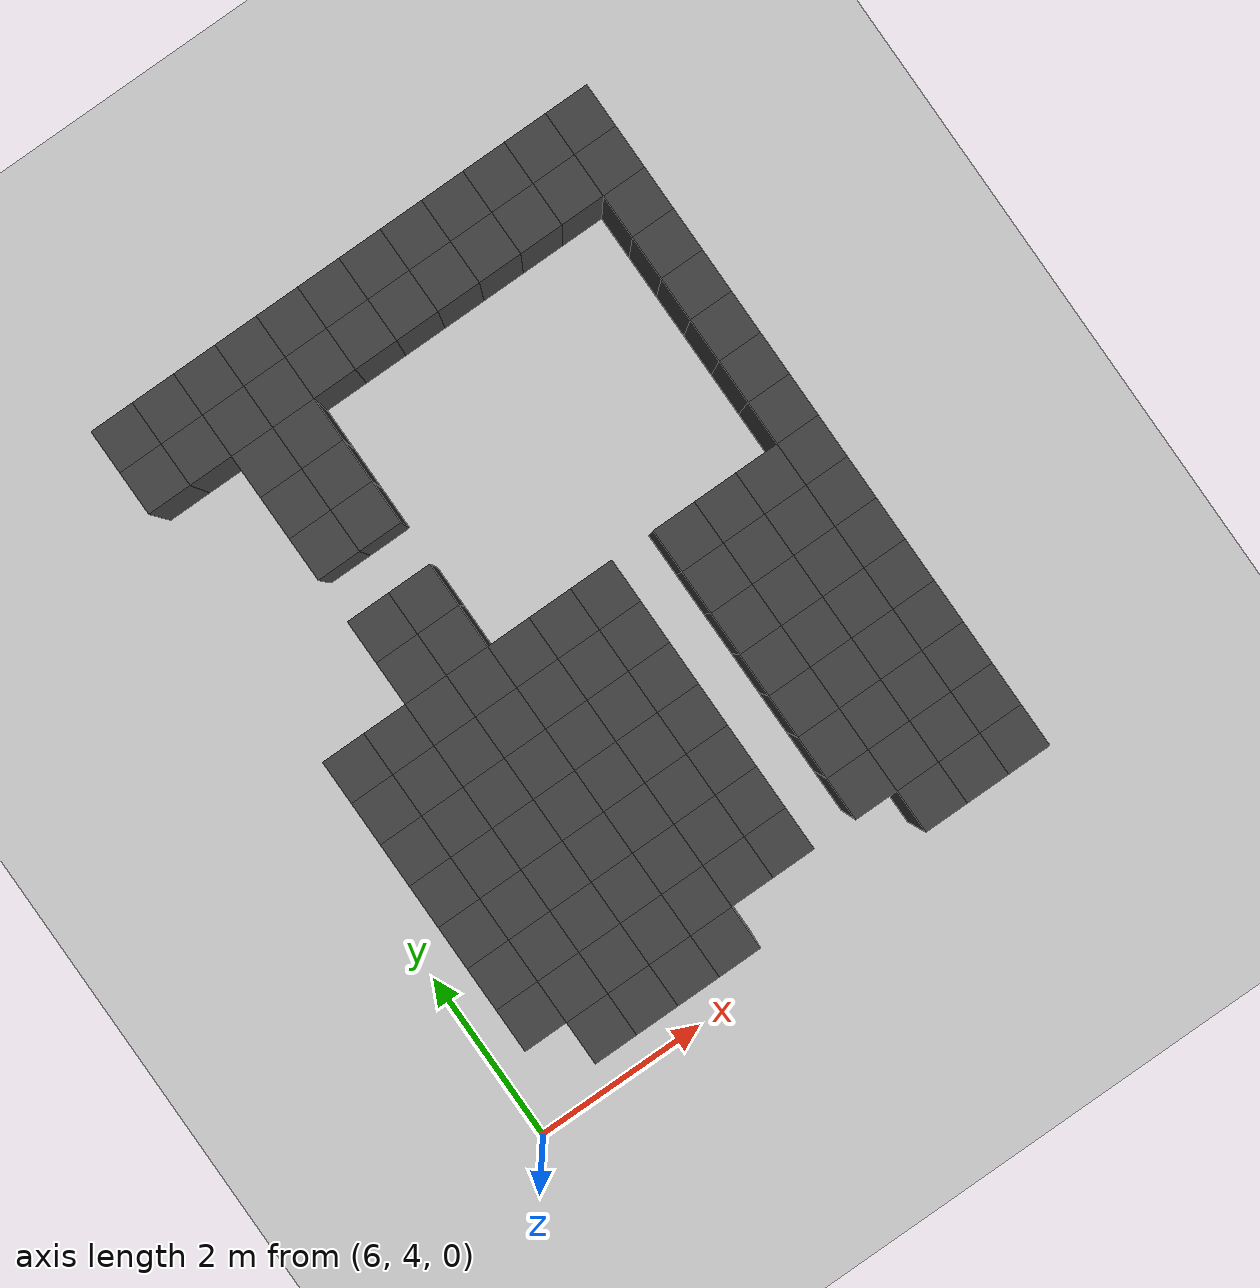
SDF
<sdf version="1.7">
 <world name="map_13994">
  <model name="ground_plane">
   <static>true</static>
   <link name="link">
    <collision name="collision">
     <geometry><plane><normal>0 0 1</normal><size>200 200</size></plane></geometry>
    </collision>
    <visual name="visual">
     <geometry><plane><normal>0 0 1</normal><size>200 200</size></plane></geometry>
     <material><ambient>0.8 0.8 0.8 1</ambient><diffuse>0.8 0.8 0.8 1</diffuse></material>
    </visual>
   </link>
  </model>
  <model name="maze_environment">
   <static>true</static>
   <link name="wall_38">
    <pose>6.750 12.250 0.500 0 0 0</pose>
    <collision name="col"><geometry><box><size>0.5 0.5 1.0</size></box></geometry></collision>
    <visual name="vis">
     <geometry><box><size>0.5 0.5 1.0</size></box></geometry>
     <material><ambient>0.15 0.15 0.15 1</ambient><diffuse>0.25 0.25 0.25 1</diffuse></material>
    </visual>
   </link>
   <link name="wall_39">
    <pose>7.250 12.250 0.500 0 0 0</pose>
    <collision name="col"><geometry><box><size>0.5 0.5 1.0</size></box></geometry></collision>
    <visual name="vis">
     <geometry><box><size>0.5 0.5 1.0</size></box></geometry>
     <material><ambient>0.15 0.15 0.15 1</ambient><diffuse>0.25 0.25 0.25 1</diffuse></material>
    </visual>
   </link>
   <link name="wall_40">
    <pose>7.750 12.250 0.500 0 0 0</pose>
    <collision name="col"><geometry><box><size>0.5 0.5 1.0</size></box></geometry></collision>
    <visual name="vis">
     <geometry><box><size>0.5 0.5 1.0</size></box></geometry>
     <material><ambient>0.15 0.15 0.15 1</ambient><diffuse>0.25 0.25 0.25 1</diffuse></material>
    </visual>
   </link>
   <link name="wall_41">
    <pose>8.250 12.250 0.500 0 0 0</pose>
    <collision name="col"><geometry><box><size>0.5 0.5 1.0</size></box></geometry></collision>
    <visual name="vis">
     <geometry><box><size>0.5 0.5 1.0</size></box></geometry>
     <material><ambient>0.15 0.15 0.15 1</ambient><diffuse>0.25 0.25 0.25 1</diffuse></material>
    </visual>
   </link>
   <link name="wall_42">
    <pose>8.750 12.250 0.500 0 0 0</pose>
    <collision name="col"><geometry><box><size>0.5 0.5 1.0</size></box></geometry></collision>
    <visual name="vis">
     <geometry><box><size>0.5 0.5 1.0</size></box></geometry>
     <material><ambient>0.15 0.15 0.15 1</ambient><diffuse>0.25 0.25 0.25 1</diffuse></material>
    </visual>
   </link>
   <link name="wall_43">
    <pose>9.250 12.250 0.500 0 0 0</pose>
    <collision name="col"><geometry><box><size>0.5 0.5 1.0</size></box></geometry></collision>
    <visual name="vis">
     <geometry><box><size>0.5 0.5 1.0</size></box></geometry>
     <material><ambient>0.15 0.15 0.15 1</ambient><diffuse>0.25 0.25 0.25 1</diffuse></material>
    </visual>
   </link>
   <link name="wall_44">
    <pose>9.750 12.250 0.500 0 0 0</pose>
    <collision name="col"><geometry><box><size>0.5 0.5 1.0</size></box></geometry></collision>
    <visual name="vis">
     <geometry><box><size>0.5 0.5 1.0</size></box></geometry>
     <material><ambient>0.15 0.15 0.15 1</ambient><diffuse>0.25 0.25 0.25 1</diffuse></material>
    </visual>
   </link>
   <link name="wall_45">
    <pose>10.250 12.250 0.500 0 0 0</pose>
    <collision name="col"><geometry><box><size>0.5 0.5 1.0</size></box></geometry></collision>
    <visual name="vis">
     <geometry><box><size>0.5 0.5 1.0</size></box></geometry>
     <material><ambient>0.15 0.15 0.15 1</ambient><diffuse>0.25 0.25 0.25 1</diffuse></material>
    </visual>
   </link>
   <link name="wall_46">
    <pose>10.750 12.250 0.500 0 0 0</pose>
    <collision name="col"><geometry><box><size>0.5 0.5 1.0</size></box></geometry></collision>
    <visual name="vis">
     <geometry><box><size>0.5 0.5 1.0</size></box></geometry>
     <material><ambient>0.15 0.15 0.15 1</ambient><diffuse>0.25 0.25 0.25 1</diffuse></material>
    </visual>
   </link>
   <link name="wall_47">
    <pose>11.250 12.250 0.500 0 0 0</pose>
    <collision name="col"><geometry><box><size>0.5 0.5 1.0</size></box></geometry></collision>
    <visual name="vis">
     <geometry><box><size>0.5 0.5 1.0</size></box></geometry>
     <material><ambient>0.15 0.15 0.15 1</ambient><diffuse>0.25 0.25 0.25 1</diffuse></material>
    </visual>
   </link>
   <link name="wall_48">
    <pose>11.750 12.250 0.500 0 0 0</pose>
    <collision name="col"><geometry><box><size>0.5 0.5 1.0</size></box></geometry></collision>
    <visual name="vis">
     <geometry><box><size>0.5 0.5 1.0</size></box></geometry>
     <material><ambient>0.15 0.15 0.15 1</ambient><diffuse>0.25 0.25 0.25 1</diffuse></material>
    </visual>
   </link>
   <link name="wall_49">
    <pose>12.250 12.250 0.500 0 0 0</pose>
    <collision name="col"><geometry><box><size>0.5 0.5 1.0</size></box></geometry></collision>
    <visual name="vis">
     <geometry><box><size>0.5 0.5 1.0</size></box></geometry>
     <material><ambient>0.15 0.15 0.15 1</ambient><diffuse>0.25 0.25 0.25 1</diffuse></material>
    </visual>
   </link>
   <link name="wall_77">
    <pose>6.750 11.750 0.500 0 0 0</pose>
    <collision name="col"><geometry><box><size>0.5 0.5 1.0</size></box></geometry></collision>
    <visual name="vis">
     <geometry><box><size>0.5 0.5 1.0</size></box></geometry>
     <material><ambient>0.15 0.15 0.15 1</ambient><diffuse>0.25 0.25 0.25 1</diffuse></material>
    </visual>
   </link>
   <link name="wall_78">
    <pose>7.250 11.750 0.500 0 0 0</pose>
    <collision name="col"><geometry><box><size>0.5 0.5 1.0</size></box></geometry></collision>
    <visual name="vis">
     <geometry><box><size>0.5 0.5 1.0</size></box></geometry>
     <material><ambient>0.15 0.15 0.15 1</ambient><diffuse>0.25 0.25 0.25 1</diffuse></material>
    </visual>
   </link>
   <link name="wall_79">
    <pose>7.750 11.750 0.500 0 0 0</pose>
    <collision name="col"><geometry><box><size>0.5 0.5 1.0</size></box></geometry></collision>
    <visual name="vis">
     <geometry><box><size>0.5 0.5 1.0</size></box></geometry>
     <material><ambient>0.15 0.15 0.15 1</ambient><diffuse>0.25 0.25 0.25 1</diffuse></material>
    </visual>
   </link>
   <link name="wall_80">
    <pose>8.250 11.750 0.500 0 0 0</pose>
    <collision name="col"><geometry><box><size>0.5 0.5 1.0</size></box></geometry></collision>
    <visual name="vis">
     <geometry><box><size>0.5 0.5 1.0</size></box></geometry>
     <material><ambient>0.15 0.15 0.15 1</ambient><diffuse>0.25 0.25 0.25 1</diffuse></material>
    </visual>
   </link>
   <link name="wall_81">
    <pose>8.750 11.750 0.500 0 0 0</pose>
    <collision name="col"><geometry><box><size>0.5 0.5 1.0</size></box></geometry></collision>
    <visual name="vis">
     <geometry><box><size>0.5 0.5 1.0</size></box></geometry>
     <material><ambient>0.15 0.15 0.15 1</ambient><diffuse>0.25 0.25 0.25 1</diffuse></material>
    </visual>
   </link>
   <link name="wall_82">
    <pose>9.250 11.750 0.500 0 0 0</pose>
    <collision name="col"><geometry><box><size>0.5 0.5 1.0</size></box></geometry></collision>
    <visual name="vis">
     <geometry><box><size>0.5 0.5 1.0</size></box></geometry>
     <material><ambient>0.15 0.15 0.15 1</ambient><diffuse>0.25 0.25 0.25 1</diffuse></material>
    </visual>
   </link>
   <link name="wall_83">
    <pose>9.750 11.750 0.500 0 0 0</pose>
    <collision name="col"><geometry><box><size>0.5 0.5 1.0</size></box></geometry></collision>
    <visual name="vis">
     <geometry><box><size>0.5 0.5 1.0</size></box></geometry>
     <material><ambient>0.15 0.15 0.15 1</ambient><diffuse>0.25 0.25 0.25 1</diffuse></material>
    </visual>
   </link>
   <link name="wall_84">
    <pose>10.250 11.750 0.500 0 0 0</pose>
    <collision name="col"><geometry><box><size>0.5 0.5 1.0</size></box></geometry></collision>
    <visual name="vis">
     <geometry><box><size>0.5 0.5 1.0</size></box></geometry>
     <material><ambient>0.15 0.15 0.15 1</ambient><diffuse>0.25 0.25 0.25 1</diffuse></material>
    </visual>
   </link>
   <link name="wall_85">
    <pose>10.750 11.750 0.500 0 0 0</pose>
    <collision name="col"><geometry><box><size>0.5 0.5 1.0</size></box></geometry></collision>
    <visual name="vis">
     <geometry><box><size>0.5 0.5 1.0</size></box></geometry>
     <material><ambient>0.15 0.15 0.15 1</ambient><diffuse>0.25 0.25 0.25 1</diffuse></material>
    </visual>
   </link>
   <link name="wall_86">
    <pose>11.250 11.750 0.500 0 0 0</pose>
    <collision name="col"><geometry><box><size>0.5 0.5 1.0</size></box></geometry></collision>
    <visual name="vis">
     <geometry><box><size>0.5 0.5 1.0</size></box></geometry>
     <material><ambient>0.15 0.15 0.15 1</ambient><diffuse>0.25 0.25 0.25 1</diffuse></material>
    </visual>
   </link>
   <link name="wall_87">
    <pose>11.750 11.750 0.500 0 0 0</pose>
    <collision name="col"><geometry><box><size>0.5 0.5 1.0</size></box></geometry></collision>
    <visual name="vis">
     <geometry><box><size>0.5 0.5 1.0</size></box></geometry>
     <material><ambient>0.15 0.15 0.15 1</ambient><diffuse>0.25 0.25 0.25 1</diffuse></material>
    </visual>
   </link>
   <link name="wall_88">
    <pose>12.250 11.750 0.500 0 0 0</pose>
    <collision name="col"><geometry><box><size>0.5 0.5 1.0</size></box></geometry></collision>
    <visual name="vis">
     <geometry><box><size>0.5 0.5 1.0</size></box></geometry>
     <material><ambient>0.15 0.15 0.15 1</ambient><diffuse>0.25 0.25 0.25 1</diffuse></material>
    </visual>
   </link>
   <link name="wall_111">
    <pose>7.750 11.250 0.500 0 0 0</pose>
    <collision name="col"><geometry><box><size>0.5 0.5 1.0</size></box></geometry></collision>
    <visual name="vis">
     <geometry><box><size>0.5 0.5 1.0</size></box></geometry>
     <material><ambient>0.15 0.15 0.15 1</ambient><diffuse>0.25 0.25 0.25 1</diffuse></material>
    </visual>
   </link>
   <link name="wall_112">
    <pose>8.250 11.250 0.500 0 0 0</pose>
    <collision name="col"><geometry><box><size>0.5 0.5 1.0</size></box></geometry></collision>
    <visual name="vis">
     <geometry><box><size>0.5 0.5 1.0</size></box></geometry>
     <material><ambient>0.15 0.15 0.15 1</ambient><diffuse>0.25 0.25 0.25 1</diffuse></material>
    </visual>
   </link>
   <link name="wall_113">
    <pose>12.250 11.250 0.500 0 0 0</pose>
    <collision name="col"><geometry><box><size>0.5 0.5 1.0</size></box></geometry></collision>
    <visual name="vis">
     <geometry><box><size>0.5 0.5 1.0</size></box></geometry>
     <material><ambient>0.15 0.15 0.15 1</ambient><diffuse>0.25 0.25 0.25 1</diffuse></material>
    </visual>
   </link>
   <link name="wall_136">
    <pose>7.750 10.750 0.500 0 0 0</pose>
    <collision name="col"><geometry><box><size>0.5 0.5 1.0</size></box></geometry></collision>
    <visual name="vis">
     <geometry><box><size>0.5 0.5 1.0</size></box></geometry>
     <material><ambient>0.15 0.15 0.15 1</ambient><diffuse>0.25 0.25 0.25 1</diffuse></material>
    </visual>
   </link>
   <link name="wall_137">
    <pose>8.250 10.750 0.500 0 0 0</pose>
    <collision name="col"><geometry><box><size>0.5 0.5 1.0</size></box></geometry></collision>
    <visual name="vis">
     <geometry><box><size>0.5 0.5 1.0</size></box></geometry>
     <material><ambient>0.15 0.15 0.15 1</ambient><diffuse>0.25 0.25 0.25 1</diffuse></material>
    </visual>
   </link>
   <link name="wall_138">
    <pose>12.250 10.750 0.500 0 0 0</pose>
    <collision name="col"><geometry><box><size>0.5 0.5 1.0</size></box></geometry></collision>
    <visual name="vis">
     <geometry><box><size>0.5 0.5 1.0</size></box></geometry>
     <material><ambient>0.15 0.15 0.15 1</ambient><diffuse>0.25 0.25 0.25 1</diffuse></material>
    </visual>
   </link>
   <link name="wall_159">
    <pose>7.750 10.250 0.500 0 0 0</pose>
    <collision name="col"><geometry><box><size>0.5 0.5 1.0</size></box></geometry></collision>
    <visual name="vis">
     <geometry><box><size>0.5 0.5 1.0</size></box></geometry>
     <material><ambient>0.15 0.15 0.15 1</ambient><diffuse>0.25 0.25 0.25 1</diffuse></material>
    </visual>
   </link>
   <link name="wall_160">
    <pose>8.250 10.250 0.500 0 0 0</pose>
    <collision name="col"><geometry><box><size>0.5 0.5 1.0</size></box></geometry></collision>
    <visual name="vis">
     <geometry><box><size>0.5 0.5 1.0</size></box></geometry>
     <material><ambient>0.15 0.15 0.15 1</ambient><diffuse>0.25 0.25 0.25 1</diffuse></material>
    </visual>
   </link>
   <link name="wall_161">
    <pose>12.250 10.250 0.500 0 0 0</pose>
    <collision name="col"><geometry><box><size>0.5 0.5 1.0</size></box></geometry></collision>
    <visual name="vis">
     <geometry><box><size>0.5 0.5 1.0</size></box></geometry>
     <material><ambient>0.15 0.15 0.15 1</ambient><diffuse>0.25 0.25 0.25 1</diffuse></material>
    </visual>
   </link>
   <link name="wall_179">
    <pose>12.250 9.750 0.500 0 0 0</pose>
    <collision name="col"><geometry><box><size>0.5 0.5 1.0</size></box></geometry></collision>
    <visual name="vis">
     <geometry><box><size>0.5 0.5 1.0</size></box></geometry>
     <material><ambient>0.15 0.15 0.15 1</ambient><diffuse>0.25 0.25 0.25 1</diffuse></material>
    </visual>
   </link>
   <link name="wall_199">
    <pose>7.750 9.250 0.500 0 0 0</pose>
    <collision name="col"><geometry><box><size>0.5 0.5 1.0</size></box></geometry></collision>
    <visual name="vis">
     <geometry><box><size>0.5 0.5 1.0</size></box></geometry>
     <material><ambient>0.15 0.15 0.15 1</ambient><diffuse>0.25 0.25 0.25 1</diffuse></material>
    </visual>
   </link>
   <link name="wall_200">
    <pose>8.250 9.250 0.500 0 0 0</pose>
    <collision name="col"><geometry><box><size>0.5 0.5 1.0</size></box></geometry></collision>
    <visual name="vis">
     <geometry><box><size>0.5 0.5 1.0</size></box></geometry>
     <material><ambient>0.15 0.15 0.15 1</ambient><diffuse>0.25 0.25 0.25 1</diffuse></material>
    </visual>
   </link>
   <link name="wall_201">
    <pose>12.250 9.250 0.500 0 0 0</pose>
    <collision name="col"><geometry><box><size>0.5 0.5 1.0</size></box></geometry></collision>
    <visual name="vis">
     <geometry><box><size>0.5 0.5 1.0</size></box></geometry>
     <material><ambient>0.15 0.15 0.15 1</ambient><diffuse>0.25 0.25 0.25 1</diffuse></material>
    </visual>
   </link>
   <link name="wall_216">
    <pose>7.750 8.750 0.500 0 0 0</pose>
    <collision name="col"><geometry><box><size>0.5 0.5 1.0</size></box></geometry></collision>
    <visual name="vis">
     <geometry><box><size>0.5 0.5 1.0</size></box></geometry>
     <material><ambient>0.15 0.15 0.15 1</ambient><diffuse>0.25 0.25 0.25 1</diffuse></material>
    </visual>
   </link>
   <link name="wall_217">
    <pose>8.250 8.750 0.500 0 0 0</pose>
    <collision name="col"><geometry><box><size>0.5 0.5 1.0</size></box></geometry></collision>
    <visual name="vis">
     <geometry><box><size>0.5 0.5 1.0</size></box></geometry>
     <material><ambient>0.15 0.15 0.15 1</ambient><diffuse>0.25 0.25 0.25 1</diffuse></material>
    </visual>
   </link>
   <link name="wall_218">
    <pose>12.250 8.750 0.500 0 0 0</pose>
    <collision name="col"><geometry><box><size>0.5 0.5 1.0</size></box></geometry></collision>
    <visual name="vis">
     <geometry><box><size>0.5 0.5 1.0</size></box></geometry>
     <material><ambient>0.15 0.15 0.15 1</ambient><diffuse>0.25 0.25 0.25 1</diffuse></material>
    </visual>
   </link>
   <link name="wall_233">
    <pose>6.750 8.250 0.500 0 0 0</pose>
    <collision name="col"><geometry><box><size>0.5 0.5 1.0</size></box></geometry></collision>
    <visual name="vis">
     <geometry><box><size>0.5 0.5 1.0</size></box></geometry>
     <material><ambient>0.15 0.15 0.15 1</ambient><diffuse>0.25 0.25 0.25 1</diffuse></material>
    </visual>
   </link>
   <link name="wall_234">
    <pose>7.250 8.250 0.500 0 0 0</pose>
    <collision name="col"><geometry><box><size>0.5 0.5 1.0</size></box></geometry></collision>
    <visual name="vis">
     <geometry><box><size>0.5 0.5 1.0</size></box></geometry>
     <material><ambient>0.15 0.15 0.15 1</ambient><diffuse>0.25 0.25 0.25 1</diffuse></material>
    </visual>
   </link>
   <link name="wall_235">
    <pose>7.750 8.250 0.500 0 0 0</pose>
    <collision name="col"><geometry><box><size>0.5 0.5 1.0</size></box></geometry></collision>
    <visual name="vis">
     <geometry><box><size>0.5 0.5 1.0</size></box></geometry>
     <material><ambient>0.15 0.15 0.15 1</ambient><diffuse>0.25 0.25 0.25 1</diffuse></material>
    </visual>
   </link>
   <link name="wall_236">
    <pose>8.250 8.250 0.500 0 0 0</pose>
    <collision name="col"><geometry><box><size>0.5 0.5 1.0</size></box></geometry></collision>
    <visual name="vis">
     <geometry><box><size>0.5 0.5 1.0</size></box></geometry>
     <material><ambient>0.15 0.15 0.15 1</ambient><diffuse>0.25 0.25 0.25 1</diffuse></material>
    </visual>
   </link>
   <link name="wall_237">
    <pose>8.750 8.250 0.500 0 0 0</pose>
    <collision name="col"><geometry><box><size>0.5 0.5 1.0</size></box></geometry></collision>
    <visual name="vis">
     <geometry><box><size>0.5 0.5 1.0</size></box></geometry>
     <material><ambient>0.15 0.15 0.15 1</ambient><diffuse>0.25 0.25 0.25 1</diffuse></material>
    </visual>
   </link>
   <link name="wall_238">
    <pose>9.250 8.250 0.500 0 0 0</pose>
    <collision name="col"><geometry><box><size>0.5 0.5 1.0</size></box></geometry></collision>
    <visual name="vis">
     <geometry><box><size>0.5 0.5 1.0</size></box></geometry>
     <material><ambient>0.15 0.15 0.15 1</ambient><diffuse>0.25 0.25 0.25 1</diffuse></material>
    </visual>
   </link>
   <link name="wall_239">
    <pose>9.750 8.250 0.500 0 0 0</pose>
    <collision name="col"><geometry><box><size>0.5 0.5 1.0</size></box></geometry></collision>
    <visual name="vis">
     <geometry><box><size>0.5 0.5 1.0</size></box></geometry>
     <material><ambient>0.15 0.15 0.15 1</ambient><diffuse>0.25 0.25 0.25 1</diffuse></material>
    </visual>
   </link>
   <link name="wall_240">
    <pose>10.750 8.250 0.500 0 0 0</pose>
    <collision name="col"><geometry><box><size>0.5 0.5 1.0</size></box></geometry></collision>
    <visual name="vis">
     <geometry><box><size>0.5 0.5 1.0</size></box></geometry>
     <material><ambient>0.15 0.15 0.15 1</ambient><diffuse>0.25 0.25 0.25 1</diffuse></material>
    </visual>
   </link>
   <link name="wall_241">
    <pose>11.250 8.250 0.500 0 0 0</pose>
    <collision name="col"><geometry><box><size>0.5 0.5 1.0</size></box></geometry></collision>
    <visual name="vis">
     <geometry><box><size>0.5 0.5 1.0</size></box></geometry>
     <material><ambient>0.15 0.15 0.15 1</ambient><diffuse>0.25 0.25 0.25 1</diffuse></material>
    </visual>
   </link>
   <link name="wall_242">
    <pose>11.750 8.250 0.500 0 0 0</pose>
    <collision name="col"><geometry><box><size>0.5 0.5 1.0</size></box></geometry></collision>
    <visual name="vis">
     <geometry><box><size>0.5 0.5 1.0</size></box></geometry>
     <material><ambient>0.15 0.15 0.15 1</ambient><diffuse>0.25 0.25 0.25 1</diffuse></material>
    </visual>
   </link>
   <link name="wall_243">
    <pose>12.250 8.250 0.500 0 0 0</pose>
    <collision name="col"><geometry><box><size>0.5 0.5 1.0</size></box></geometry></collision>
    <visual name="vis">
     <geometry><box><size>0.5 0.5 1.0</size></box></geometry>
     <material><ambient>0.15 0.15 0.15 1</ambient><diffuse>0.25 0.25 0.25 1</diffuse></material>
    </visual>
   </link>
   <link name="wall_263">
    <pose>6.750 7.750 0.500 0 0 0</pose>
    <collision name="col"><geometry><box><size>0.5 0.5 1.0</size></box></geometry></collision>
    <visual name="vis">
     <geometry><box><size>0.5 0.5 1.0</size></box></geometry>
     <material><ambient>0.15 0.15 0.15 1</ambient><diffuse>0.25 0.25 0.25 1</diffuse></material>
    </visual>
   </link>
   <link name="wall_264">
    <pose>7.250 7.750 0.500 0 0 0</pose>
    <collision name="col"><geometry><box><size>0.5 0.5 1.0</size></box></geometry></collision>
    <visual name="vis">
     <geometry><box><size>0.5 0.5 1.0</size></box></geometry>
     <material><ambient>0.15 0.15 0.15 1</ambient><diffuse>0.25 0.25 0.25 1</diffuse></material>
    </visual>
   </link>
   <link name="wall_265">
    <pose>7.750 7.750 0.500 0 0 0</pose>
    <collision name="col"><geometry><box><size>0.5 0.5 1.0</size></box></geometry></collision>
    <visual name="vis">
     <geometry><box><size>0.5 0.5 1.0</size></box></geometry>
     <material><ambient>0.15 0.15 0.15 1</ambient><diffuse>0.25 0.25 0.25 1</diffuse></material>
    </visual>
   </link>
   <link name="wall_266">
    <pose>8.250 7.750 0.500 0 0 0</pose>
    <collision name="col"><geometry><box><size>0.5 0.5 1.0</size></box></geometry></collision>
    <visual name="vis">
     <geometry><box><size>0.5 0.5 1.0</size></box></geometry>
     <material><ambient>0.15 0.15 0.15 1</ambient><diffuse>0.25 0.25 0.25 1</diffuse></material>
    </visual>
   </link>
   <link name="wall_267">
    <pose>8.750 7.750 0.500 0 0 0</pose>
    <collision name="col"><geometry><box><size>0.5 0.5 1.0</size></box></geometry></collision>
    <visual name="vis">
     <geometry><box><size>0.5 0.5 1.0</size></box></geometry>
     <material><ambient>0.15 0.15 0.15 1</ambient><diffuse>0.25 0.25 0.25 1</diffuse></material>
    </visual>
   </link>
   <link name="wall_268">
    <pose>9.250 7.750 0.500 0 0 0</pose>
    <collision name="col"><geometry><box><size>0.5 0.5 1.0</size></box></geometry></collision>
    <visual name="vis">
     <geometry><box><size>0.5 0.5 1.0</size></box></geometry>
     <material><ambient>0.15 0.15 0.15 1</ambient><diffuse>0.25 0.25 0.25 1</diffuse></material>
    </visual>
   </link>
   <link name="wall_269">
    <pose>9.750 7.750 0.500 0 0 0</pose>
    <collision name="col"><geometry><box><size>0.5 0.5 1.0</size></box></geometry></collision>
    <visual name="vis">
     <geometry><box><size>0.5 0.5 1.0</size></box></geometry>
     <material><ambient>0.15 0.15 0.15 1</ambient><diffuse>0.25 0.25 0.25 1</diffuse></material>
    </visual>
   </link>
   <link name="wall_270">
    <pose>10.750 7.750 0.500 0 0 0</pose>
    <collision name="col"><geometry><box><size>0.5 0.5 1.0</size></box></geometry></collision>
    <visual name="vis">
     <geometry><box><size>0.5 0.5 1.0</size></box></geometry>
     <material><ambient>0.15 0.15 0.15 1</ambient><diffuse>0.25 0.25 0.25 1</diffuse></material>
    </visual>
   </link>
   <link name="wall_271">
    <pose>11.250 7.750 0.500 0 0 0</pose>
    <collision name="col"><geometry><box><size>0.5 0.5 1.0</size></box></geometry></collision>
    <visual name="vis">
     <geometry><box><size>0.5 0.5 1.0</size></box></geometry>
     <material><ambient>0.15 0.15 0.15 1</ambient><diffuse>0.25 0.25 0.25 1</diffuse></material>
    </visual>
   </link>
   <link name="wall_272">
    <pose>11.750 7.750 0.500 0 0 0</pose>
    <collision name="col"><geometry><box><size>0.5 0.5 1.0</size></box></geometry></collision>
    <visual name="vis">
     <geometry><box><size>0.5 0.5 1.0</size></box></geometry>
     <material><ambient>0.15 0.15 0.15 1</ambient><diffuse>0.25 0.25 0.25 1</diffuse></material>
    </visual>
   </link>
   <link name="wall_273">
    <pose>12.250 7.750 0.500 0 0 0</pose>
    <collision name="col"><geometry><box><size>0.5 0.5 1.0</size></box></geometry></collision>
    <visual name="vis">
     <geometry><box><size>0.5 0.5 1.0</size></box></geometry>
     <material><ambient>0.15 0.15 0.15 1</ambient><diffuse>0.25 0.25 0.25 1</diffuse></material>
    </visual>
   </link>
   <link name="wall_293">
    <pose>6.750 7.250 0.500 0 0 0</pose>
    <collision name="col"><geometry><box><size>0.5 0.5 1.0</size></box></geometry></collision>
    <visual name="vis">
     <geometry><box><size>0.5 0.5 1.0</size></box></geometry>
     <material><ambient>0.15 0.15 0.15 1</ambient><diffuse>0.25 0.25 0.25 1</diffuse></material>
    </visual>
   </link>
   <link name="wall_294">
    <pose>7.250 7.250 0.500 0 0 0</pose>
    <collision name="col"><geometry><box><size>0.5 0.5 1.0</size></box></geometry></collision>
    <visual name="vis">
     <geometry><box><size>0.5 0.5 1.0</size></box></geometry>
     <material><ambient>0.15 0.15 0.15 1</ambient><diffuse>0.25 0.25 0.25 1</diffuse></material>
    </visual>
   </link>
   <link name="wall_295">
    <pose>7.750 7.250 0.500 0 0 0</pose>
    <collision name="col"><geometry><box><size>0.5 0.5 1.0</size></box></geometry></collision>
    <visual name="vis">
     <geometry><box><size>0.5 0.5 1.0</size></box></geometry>
     <material><ambient>0.15 0.15 0.15 1</ambient><diffuse>0.25 0.25 0.25 1</diffuse></material>
    </visual>
   </link>
   <link name="wall_296">
    <pose>8.250 7.250 0.500 0 0 0</pose>
    <collision name="col"><geometry><box><size>0.5 0.5 1.0</size></box></geometry></collision>
    <visual name="vis">
     <geometry><box><size>0.5 0.5 1.0</size></box></geometry>
     <material><ambient>0.15 0.15 0.15 1</ambient><diffuse>0.25 0.25 0.25 1</diffuse></material>
    </visual>
   </link>
   <link name="wall_297">
    <pose>8.750 7.250 0.500 0 0 0</pose>
    <collision name="col"><geometry><box><size>0.5 0.5 1.0</size></box></geometry></collision>
    <visual name="vis">
     <geometry><box><size>0.5 0.5 1.0</size></box></geometry>
     <material><ambient>0.15 0.15 0.15 1</ambient><diffuse>0.25 0.25 0.25 1</diffuse></material>
    </visual>
   </link>
   <link name="wall_298">
    <pose>9.250 7.250 0.500 0 0 0</pose>
    <collision name="col"><geometry><box><size>0.5 0.5 1.0</size></box></geometry></collision>
    <visual name="vis">
     <geometry><box><size>0.5 0.5 1.0</size></box></geometry>
     <material><ambient>0.15 0.15 0.15 1</ambient><diffuse>0.25 0.25 0.25 1</diffuse></material>
    </visual>
   </link>
   <link name="wall_299">
    <pose>9.750 7.250 0.500 0 0 0</pose>
    <collision name="col"><geometry><box><size>0.5 0.5 1.0</size></box></geometry></collision>
    <visual name="vis">
     <geometry><box><size>0.5 0.5 1.0</size></box></geometry>
     <material><ambient>0.15 0.15 0.15 1</ambient><diffuse>0.25 0.25 0.25 1</diffuse></material>
    </visual>
   </link>
   <link name="wall_300">
    <pose>10.750 7.250 0.500 0 0 0</pose>
    <collision name="col"><geometry><box><size>0.5 0.5 1.0</size></box></geometry></collision>
    <visual name="vis">
     <geometry><box><size>0.5 0.5 1.0</size></box></geometry>
     <material><ambient>0.15 0.15 0.15 1</ambient><diffuse>0.25 0.25 0.25 1</diffuse></material>
    </visual>
   </link>
   <link name="wall_301">
    <pose>11.250 7.250 0.500 0 0 0</pose>
    <collision name="col"><geometry><box><size>0.5 0.5 1.0</size></box></geometry></collision>
    <visual name="vis">
     <geometry><box><size>0.5 0.5 1.0</size></box></geometry>
     <material><ambient>0.15 0.15 0.15 1</ambient><diffuse>0.25 0.25 0.25 1</diffuse></material>
    </visual>
   </link>
   <link name="wall_302">
    <pose>11.750 7.250 0.500 0 0 0</pose>
    <collision name="col"><geometry><box><size>0.5 0.5 1.0</size></box></geometry></collision>
    <visual name="vis">
     <geometry><box><size>0.5 0.5 1.0</size></box></geometry>
     <material><ambient>0.15 0.15 0.15 1</ambient><diffuse>0.25 0.25 0.25 1</diffuse></material>
    </visual>
   </link>
   <link name="wall_303">
    <pose>12.250 7.250 0.500 0 0 0</pose>
    <collision name="col"><geometry><box><size>0.5 0.5 1.0</size></box></geometry></collision>
    <visual name="vis">
     <geometry><box><size>0.5 0.5 1.0</size></box></geometry>
     <material><ambient>0.15 0.15 0.15 1</ambient><diffuse>0.25 0.25 0.25 1</diffuse></material>
    </visual>
   </link>
   <link name="wall_330">
    <pose>6.750 6.750 0.500 0 0 0</pose>
    <collision name="col"><geometry><box><size>0.5 0.5 1.0</size></box></geometry></collision>
    <visual name="vis">
     <geometry><box><size>0.5 0.5 1.0</size></box></geometry>
     <material><ambient>0.15 0.15 0.15 1</ambient><diffuse>0.25 0.25 0.25 1</diffuse></material>
    </visual>
   </link>
   <link name="wall_331">
    <pose>7.250 6.750 0.500 0 0 0</pose>
    <collision name="col"><geometry><box><size>0.5 0.5 1.0</size></box></geometry></collision>
    <visual name="vis">
     <geometry><box><size>0.5 0.5 1.0</size></box></geometry>
     <material><ambient>0.15 0.15 0.15 1</ambient><diffuse>0.25 0.25 0.25 1</diffuse></material>
    </visual>
   </link>
   <link name="wall_332">
    <pose>7.750 6.750 0.500 0 0 0</pose>
    <collision name="col"><geometry><box><size>0.5 0.5 1.0</size></box></geometry></collision>
    <visual name="vis">
     <geometry><box><size>0.5 0.5 1.0</size></box></geometry>
     <material><ambient>0.15 0.15 0.15 1</ambient><diffuse>0.25 0.25 0.25 1</diffuse></material>
    </visual>
   </link>
   <link name="wall_333">
    <pose>8.250 6.750 0.500 0 0 0</pose>
    <collision name="col"><geometry><box><size>0.5 0.5 1.0</size></box></geometry></collision>
    <visual name="vis">
     <geometry><box><size>0.5 0.5 1.0</size></box></geometry>
     <material><ambient>0.15 0.15 0.15 1</ambient><diffuse>0.25 0.25 0.25 1</diffuse></material>
    </visual>
   </link>
   <link name="wall_334">
    <pose>8.750 6.750 0.500 0 0 0</pose>
    <collision name="col"><geometry><box><size>0.5 0.5 1.0</size></box></geometry></collision>
    <visual name="vis">
     <geometry><box><size>0.5 0.5 1.0</size></box></geometry>
     <material><ambient>0.15 0.15 0.15 1</ambient><diffuse>0.25 0.25 0.25 1</diffuse></material>
    </visual>
   </link>
   <link name="wall_335">
    <pose>9.250 6.750 0.500 0 0 0</pose>
    <collision name="col"><geometry><box><size>0.5 0.5 1.0</size></box></geometry></collision>
    <visual name="vis">
     <geometry><box><size>0.5 0.5 1.0</size></box></geometry>
     <material><ambient>0.15 0.15 0.15 1</ambient><diffuse>0.25 0.25 0.25 1</diffuse></material>
    </visual>
   </link>
   <link name="wall_336">
    <pose>9.750 6.750 0.500 0 0 0</pose>
    <collision name="col"><geometry><box><size>0.5 0.5 1.0</size></box></geometry></collision>
    <visual name="vis">
     <geometry><box><size>0.5 0.5 1.0</size></box></geometry>
     <material><ambient>0.15 0.15 0.15 1</ambient><diffuse>0.25 0.25 0.25 1</diffuse></material>
    </visual>
   </link>
   <link name="wall_337">
    <pose>10.750 6.750 0.500 0 0 0</pose>
    <collision name="col"><geometry><box><size>0.5 0.5 1.0</size></box></geometry></collision>
    <visual name="vis">
     <geometry><box><size>0.5 0.5 1.0</size></box></geometry>
     <material><ambient>0.15 0.15 0.15 1</ambient><diffuse>0.25 0.25 0.25 1</diffuse></material>
    </visual>
   </link>
   <link name="wall_338">
    <pose>11.250 6.750 0.500 0 0 0</pose>
    <collision name="col"><geometry><box><size>0.5 0.5 1.0</size></box></geometry></collision>
    <visual name="vis">
     <geometry><box><size>0.5 0.5 1.0</size></box></geometry>
     <material><ambient>0.15 0.15 0.15 1</ambient><diffuse>0.25 0.25 0.25 1</diffuse></material>
    </visual>
   </link>
   <link name="wall_339">
    <pose>11.750 6.750 0.500 0 0 0</pose>
    <collision name="col"><geometry><box><size>0.5 0.5 1.0</size></box></geometry></collision>
    <visual name="vis">
     <geometry><box><size>0.5 0.5 1.0</size></box></geometry>
     <material><ambient>0.15 0.15 0.15 1</ambient><diffuse>0.25 0.25 0.25 1</diffuse></material>
    </visual>
   </link>
   <link name="wall_340">
    <pose>12.250 6.750 0.500 0 0 0</pose>
    <collision name="col"><geometry><box><size>0.5 0.5 1.0</size></box></geometry></collision>
    <visual name="vis">
     <geometry><box><size>0.5 0.5 1.0</size></box></geometry>
     <material><ambient>0.15 0.15 0.15 1</ambient><diffuse>0.25 0.25 0.25 1</diffuse></material>
    </visual>
   </link>
   <link name="wall_363">
    <pose>6.750 6.250 0.500 0 0 0</pose>
    <collision name="col"><geometry><box><size>0.5 0.5 1.0</size></box></geometry></collision>
    <visual name="vis">
     <geometry><box><size>0.5 0.5 1.0</size></box></geometry>
     <material><ambient>0.15 0.15 0.15 1</ambient><diffuse>0.25 0.25 0.25 1</diffuse></material>
    </visual>
   </link>
   <link name="wall_364">
    <pose>7.250 6.250 0.500 0 0 0</pose>
    <collision name="col"><geometry><box><size>0.5 0.5 1.0</size></box></geometry></collision>
    <visual name="vis">
     <geometry><box><size>0.5 0.5 1.0</size></box></geometry>
     <material><ambient>0.15 0.15 0.15 1</ambient><diffuse>0.25 0.25 0.25 1</diffuse></material>
    </visual>
   </link>
   <link name="wall_365">
    <pose>7.750 6.250 0.500 0 0 0</pose>
    <collision name="col"><geometry><box><size>0.5 0.5 1.0</size></box></geometry></collision>
    <visual name="vis">
     <geometry><box><size>0.5 0.5 1.0</size></box></geometry>
     <material><ambient>0.15 0.15 0.15 1</ambient><diffuse>0.25 0.25 0.25 1</diffuse></material>
    </visual>
   </link>
   <link name="wall_366">
    <pose>8.250 6.250 0.500 0 0 0</pose>
    <collision name="col"><geometry><box><size>0.5 0.5 1.0</size></box></geometry></collision>
    <visual name="vis">
     <geometry><box><size>0.5 0.5 1.0</size></box></geometry>
     <material><ambient>0.15 0.15 0.15 1</ambient><diffuse>0.25 0.25 0.25 1</diffuse></material>
    </visual>
   </link>
   <link name="wall_367">
    <pose>8.750 6.250 0.500 0 0 0</pose>
    <collision name="col"><geometry><box><size>0.5 0.5 1.0</size></box></geometry></collision>
    <visual name="vis">
     <geometry><box><size>0.5 0.5 1.0</size></box></geometry>
     <material><ambient>0.15 0.15 0.15 1</ambient><diffuse>0.25 0.25 0.25 1</diffuse></material>
    </visual>
   </link>
   <link name="wall_368">
    <pose>9.250 6.250 0.500 0 0 0</pose>
    <collision name="col"><geometry><box><size>0.5 0.5 1.0</size></box></geometry></collision>
    <visual name="vis">
     <geometry><box><size>0.5 0.5 1.0</size></box></geometry>
     <material><ambient>0.15 0.15 0.15 1</ambient><diffuse>0.25 0.25 0.25 1</diffuse></material>
    </visual>
   </link>
   <link name="wall_369">
    <pose>9.750 6.250 0.500 0 0 0</pose>
    <collision name="col"><geometry><box><size>0.5 0.5 1.0</size></box></geometry></collision>
    <visual name="vis">
     <geometry><box><size>0.5 0.5 1.0</size></box></geometry>
     <material><ambient>0.15 0.15 0.15 1</ambient><diffuse>0.25 0.25 0.25 1</diffuse></material>
    </visual>
   </link>
   <link name="wall_370">
    <pose>10.750 6.250 0.500 0 0 0</pose>
    <collision name="col"><geometry><box><size>0.5 0.5 1.0</size></box></geometry></collision>
    <visual name="vis">
     <geometry><box><size>0.5 0.5 1.0</size></box></geometry>
     <material><ambient>0.15 0.15 0.15 1</ambient><diffuse>0.25 0.25 0.25 1</diffuse></material>
    </visual>
   </link>
   <link name="wall_371">
    <pose>11.250 6.250 0.500 0 0 0</pose>
    <collision name="col"><geometry><box><size>0.5 0.5 1.0</size></box></geometry></collision>
    <visual name="vis">
     <geometry><box><size>0.5 0.5 1.0</size></box></geometry>
     <material><ambient>0.15 0.15 0.15 1</ambient><diffuse>0.25 0.25 0.25 1</diffuse></material>
    </visual>
   </link>
   <link name="wall_372">
    <pose>11.750 6.250 0.500 0 0 0</pose>
    <collision name="col"><geometry><box><size>0.5 0.5 1.0</size></box></geometry></collision>
    <visual name="vis">
     <geometry><box><size>0.5 0.5 1.0</size></box></geometry>
     <material><ambient>0.15 0.15 0.15 1</ambient><diffuse>0.25 0.25 0.25 1</diffuse></material>
    </visual>
   </link>
   <link name="wall_373">
    <pose>12.250 6.250 0.500 0 0 0</pose>
    <collision name="col"><geometry><box><size>0.5 0.5 1.0</size></box></geometry></collision>
    <visual name="vis">
     <geometry><box><size>0.5 0.5 1.0</size></box></geometry>
     <material><ambient>0.15 0.15 0.15 1</ambient><diffuse>0.25 0.25 0.25 1</diffuse></material>
    </visual>
   </link>
   <link name="wall_397">
    <pose>6.750 5.750 0.500 0 0 0</pose>
    <collision name="col"><geometry><box><size>0.5 0.5 1.0</size></box></geometry></collision>
    <visual name="vis">
     <geometry><box><size>0.5 0.5 1.0</size></box></geometry>
     <material><ambient>0.15 0.15 0.15 1</ambient><diffuse>0.25 0.25 0.25 1</diffuse></material>
    </visual>
   </link>
   <link name="wall_398">
    <pose>7.250 5.750 0.500 0 0 0</pose>
    <collision name="col"><geometry><box><size>0.5 0.5 1.0</size></box></geometry></collision>
    <visual name="vis">
     <geometry><box><size>0.5 0.5 1.0</size></box></geometry>
     <material><ambient>0.15 0.15 0.15 1</ambient><diffuse>0.25 0.25 0.25 1</diffuse></material>
    </visual>
   </link>
   <link name="wall_399">
    <pose>7.750 5.750 0.500 0 0 0</pose>
    <collision name="col"><geometry><box><size>0.5 0.5 1.0</size></box></geometry></collision>
    <visual name="vis">
     <geometry><box><size>0.5 0.5 1.0</size></box></geometry>
     <material><ambient>0.15 0.15 0.15 1</ambient><diffuse>0.25 0.25 0.25 1</diffuse></material>
    </visual>
   </link>
   <link name="wall_400">
    <pose>8.250 5.750 0.500 0 0 0</pose>
    <collision name="col"><geometry><box><size>0.5 0.5 1.0</size></box></geometry></collision>
    <visual name="vis">
     <geometry><box><size>0.5 0.5 1.0</size></box></geometry>
     <material><ambient>0.15 0.15 0.15 1</ambient><diffuse>0.25 0.25 0.25 1</diffuse></material>
    </visual>
   </link>
   <link name="wall_401">
    <pose>8.750 5.750 0.500 0 0 0</pose>
    <collision name="col"><geometry><box><size>0.5 0.5 1.0</size></box></geometry></collision>
    <visual name="vis">
     <geometry><box><size>0.5 0.5 1.0</size></box></geometry>
     <material><ambient>0.15 0.15 0.15 1</ambient><diffuse>0.25 0.25 0.25 1</diffuse></material>
    </visual>
   </link>
   <link name="wall_402">
    <pose>9.250 5.750 0.500 0 0 0</pose>
    <collision name="col"><geometry><box><size>0.5 0.5 1.0</size></box></geometry></collision>
    <visual name="vis">
     <geometry><box><size>0.5 0.5 1.0</size></box></geometry>
     <material><ambient>0.15 0.15 0.15 1</ambient><diffuse>0.25 0.25 0.25 1</diffuse></material>
    </visual>
   </link>
   <link name="wall_403">
    <pose>9.750 5.750 0.500 0 0 0</pose>
    <collision name="col"><geometry><box><size>0.5 0.5 1.0</size></box></geometry></collision>
    <visual name="vis">
     <geometry><box><size>0.5 0.5 1.0</size></box></geometry>
     <material><ambient>0.15 0.15 0.15 1</ambient><diffuse>0.25 0.25 0.25 1</diffuse></material>
    </visual>
   </link>
   <link name="wall_404">
    <pose>10.750 5.750 0.500 0 0 0</pose>
    <collision name="col"><geometry><box><size>0.5 0.5 1.0</size></box></geometry></collision>
    <visual name="vis">
     <geometry><box><size>0.5 0.5 1.0</size></box></geometry>
     <material><ambient>0.15 0.15 0.15 1</ambient><diffuse>0.25 0.25 0.25 1</diffuse></material>
    </visual>
   </link>
   <link name="wall_405">
    <pose>11.250 5.750 0.500 0 0 0</pose>
    <collision name="col"><geometry><box><size>0.5 0.5 1.0</size></box></geometry></collision>
    <visual name="vis">
     <geometry><box><size>0.5 0.5 1.0</size></box></geometry>
     <material><ambient>0.15 0.15 0.15 1</ambient><diffuse>0.25 0.25 0.25 1</diffuse></material>
    </visual>
   </link>
   <link name="wall_406">
    <pose>11.750 5.750 0.500 0 0 0</pose>
    <collision name="col"><geometry><box><size>0.5 0.5 1.0</size></box></geometry></collision>
    <visual name="vis">
     <geometry><box><size>0.5 0.5 1.0</size></box></geometry>
     <material><ambient>0.15 0.15 0.15 1</ambient><diffuse>0.25 0.25 0.25 1</diffuse></material>
    </visual>
   </link>
   <link name="wall_407">
    <pose>12.250 5.750 0.500 0 0 0</pose>
    <collision name="col"><geometry><box><size>0.5 0.5 1.0</size></box></geometry></collision>
    <visual name="vis">
     <geometry><box><size>0.5 0.5 1.0</size></box></geometry>
     <material><ambient>0.15 0.15 0.15 1</ambient><diffuse>0.25 0.25 0.25 1</diffuse></material>
    </visual>
   </link>
   <link name="wall_435">
    <pose>6.750 5.250 0.500 0 0 0</pose>
    <collision name="col"><geometry><box><size>0.5 0.5 1.0</size></box></geometry></collision>
    <visual name="vis">
     <geometry><box><size>0.5 0.5 1.0</size></box></geometry>
     <material><ambient>0.15 0.15 0.15 1</ambient><diffuse>0.25 0.25 0.25 1</diffuse></material>
    </visual>
   </link>
   <link name="wall_436">
    <pose>7.250 5.250 0.500 0 0 0</pose>
    <collision name="col"><geometry><box><size>0.5 0.5 1.0</size></box></geometry></collision>
    <visual name="vis">
     <geometry><box><size>0.5 0.5 1.0</size></box></geometry>
     <material><ambient>0.15 0.15 0.15 1</ambient><diffuse>0.25 0.25 0.25 1</diffuse></material>
    </visual>
   </link>
   <link name="wall_437">
    <pose>7.750 5.250 0.500 0 0 0</pose>
    <collision name="col"><geometry><box><size>0.5 0.5 1.0</size></box></geometry></collision>
    <visual name="vis">
     <geometry><box><size>0.5 0.5 1.0</size></box></geometry>
     <material><ambient>0.15 0.15 0.15 1</ambient><diffuse>0.25 0.25 0.25 1</diffuse></material>
    </visual>
   </link>
   <link name="wall_438">
    <pose>8.250 5.250 0.500 0 0 0</pose>
    <collision name="col"><geometry><box><size>0.5 0.5 1.0</size></box></geometry></collision>
    <visual name="vis">
     <geometry><box><size>0.5 0.5 1.0</size></box></geometry>
     <material><ambient>0.15 0.15 0.15 1</ambient><diffuse>0.25 0.25 0.25 1</diffuse></material>
    </visual>
   </link>
   <link name="wall_439">
    <pose>8.750 5.250 0.500 0 0 0</pose>
    <collision name="col"><geometry><box><size>0.5 0.5 1.0</size></box></geometry></collision>
    <visual name="vis">
     <geometry><box><size>0.5 0.5 1.0</size></box></geometry>
     <material><ambient>0.15 0.15 0.15 1</ambient><diffuse>0.25 0.25 0.25 1</diffuse></material>
    </visual>
   </link>
   <link name="wall_440">
    <pose>9.250 5.250 0.500 0 0 0</pose>
    <collision name="col"><geometry><box><size>0.5 0.5 1.0</size></box></geometry></collision>
    <visual name="vis">
     <geometry><box><size>0.5 0.5 1.0</size></box></geometry>
     <material><ambient>0.15 0.15 0.15 1</ambient><diffuse>0.25 0.25 0.25 1</diffuse></material>
    </visual>
   </link>
   <link name="wall_441">
    <pose>9.750 5.250 0.500 0 0 0</pose>
    <collision name="col"><geometry><box><size>0.5 0.5 1.0</size></box></geometry></collision>
    <visual name="vis">
     <geometry><box><size>0.5 0.5 1.0</size></box></geometry>
     <material><ambient>0.15 0.15 0.15 1</ambient><diffuse>0.25 0.25 0.25 1</diffuse></material>
    </visual>
   </link>
   <link name="wall_442">
    <pose>10.750 5.250 0.500 0 0 0</pose>
    <collision name="col"><geometry><box><size>0.5 0.5 1.0</size></box></geometry></collision>
    <visual name="vis">
     <geometry><box><size>0.5 0.5 1.0</size></box></geometry>
     <material><ambient>0.15 0.15 0.15 1</ambient><diffuse>0.25 0.25 0.25 1</diffuse></material>
    </visual>
   </link>
   <link name="wall_443">
    <pose>11.250 5.250 0.500 0 0 0</pose>
    <collision name="col"><geometry><box><size>0.5 0.5 1.0</size></box></geometry></collision>
    <visual name="vis">
     <geometry><box><size>0.5 0.5 1.0</size></box></geometry>
     <material><ambient>0.15 0.15 0.15 1</ambient><diffuse>0.25 0.25 0.25 1</diffuse></material>
    </visual>
   </link>
   <link name="wall_444">
    <pose>11.750 5.250 0.500 0 0 0</pose>
    <collision name="col"><geometry><box><size>0.5 0.5 1.0</size></box></geometry></collision>
    <visual name="vis">
     <geometry><box><size>0.5 0.5 1.0</size></box></geometry>
     <material><ambient>0.15 0.15 0.15 1</ambient><diffuse>0.25 0.25 0.25 1</diffuse></material>
    </visual>
   </link>
   <link name="wall_445">
    <pose>12.250 5.250 0.500 0 0 0</pose>
    <collision name="col"><geometry><box><size>0.5 0.5 1.0</size></box></geometry></collision>
    <visual name="vis">
     <geometry><box><size>0.5 0.5 1.0</size></box></geometry>
     <material><ambient>0.15 0.15 0.15 1</ambient><diffuse>0.25 0.25 0.25 1</diffuse></material>
    </visual>
   </link>
   <link name="wall_474">
    <pose>7.250 4.750 0.500 0 0 0</pose>
    <collision name="col"><geometry><box><size>0.5 0.5 1.0</size></box></geometry></collision>
    <visual name="vis">
     <geometry><box><size>0.5 0.5 1.0</size></box></geometry>
     <material><ambient>0.15 0.15 0.15 1</ambient><diffuse>0.25 0.25 0.25 1</diffuse></material>
    </visual>
   </link>
   <link name="wall_475">
    <pose>7.750 4.750 0.500 0 0 0</pose>
    <collision name="col"><geometry><box><size>0.5 0.5 1.0</size></box></geometry></collision>
    <visual name="vis">
     <geometry><box><size>0.5 0.5 1.0</size></box></geometry>
     <material><ambient>0.15 0.15 0.15 1</ambient><diffuse>0.25 0.25 0.25 1</diffuse></material>
    </visual>
   </link>
   <link name="wall_476">
    <pose>8.250 4.750 0.500 0 0 0</pose>
    <collision name="col"><geometry><box><size>0.5 0.5 1.0</size></box></geometry></collision>
    <visual name="vis">
     <geometry><box><size>0.5 0.5 1.0</size></box></geometry>
     <material><ambient>0.15 0.15 0.15 1</ambient><diffuse>0.25 0.25 0.25 1</diffuse></material>
    </visual>
   </link>
   <link name="wall_477">
    <pose>8.750 4.750 0.500 0 0 0</pose>
    <collision name="col"><geometry><box><size>0.5 0.5 1.0</size></box></geometry></collision>
    <visual name="vis">
     <geometry><box><size>0.5 0.5 1.0</size></box></geometry>
     <material><ambient>0.15 0.15 0.15 1</ambient><diffuse>0.25 0.25 0.25 1</diffuse></material>
    </visual>
   </link>
   <link name="wall_478">
    <pose>11.250 4.750 0.500 0 0 0</pose>
    <collision name="col"><geometry><box><size>0.5 0.5 1.0</size></box></geometry></collision>
    <visual name="vis">
     <geometry><box><size>0.5 0.5 1.0</size></box></geometry>
     <material><ambient>0.15 0.15 0.15 1</ambient><diffuse>0.25 0.25 0.25 1</diffuse></material>
    </visual>
   </link>
   <link name="wall_479">
    <pose>11.750 4.750 0.500 0 0 0</pose>
    <collision name="col"><geometry><box><size>0.5 0.5 1.0</size></box></geometry></collision>
    <visual name="vis">
     <geometry><box><size>0.5 0.5 1.0</size></box></geometry>
     <material><ambient>0.15 0.15 0.15 1</ambient><diffuse>0.25 0.25 0.25 1</diffuse></material>
    </visual>
   </link>
   <link name="wall_480">
    <pose>12.250 4.750 0.500 0 0 0</pose>
    <collision name="col"><geometry><box><size>0.5 0.5 1.0</size></box></geometry></collision>
    <visual name="vis">
     <geometry><box><size>0.5 0.5 1.0</size></box></geometry>
     <material><ambient>0.15 0.15 0.15 1</ambient><diffuse>0.25 0.25 0.25 1</diffuse></material>
    </visual>
   </link>
  </model>
 </world>
</sdf>
